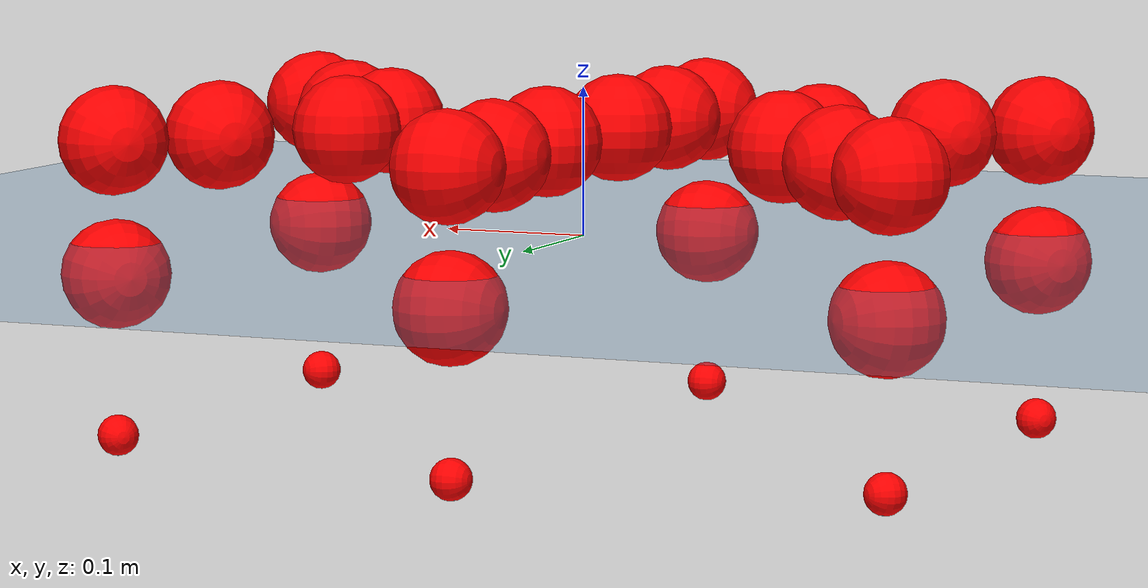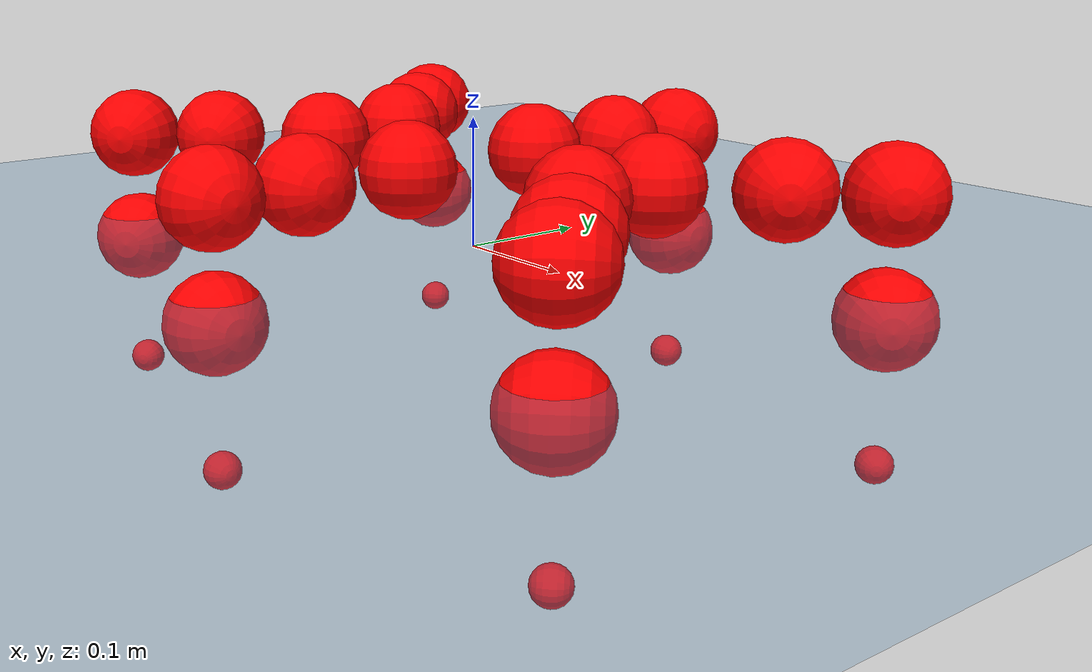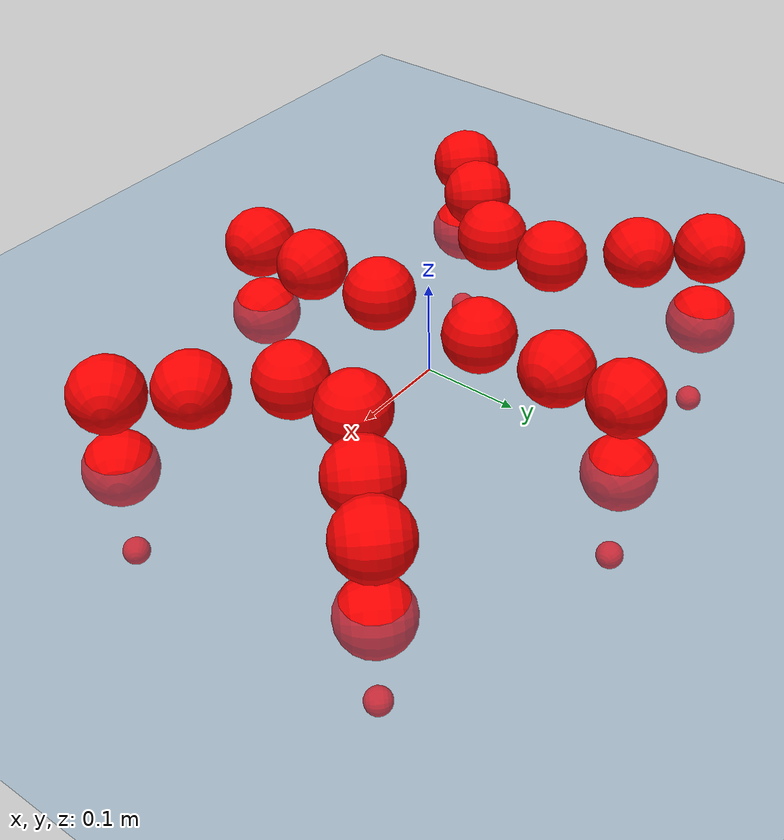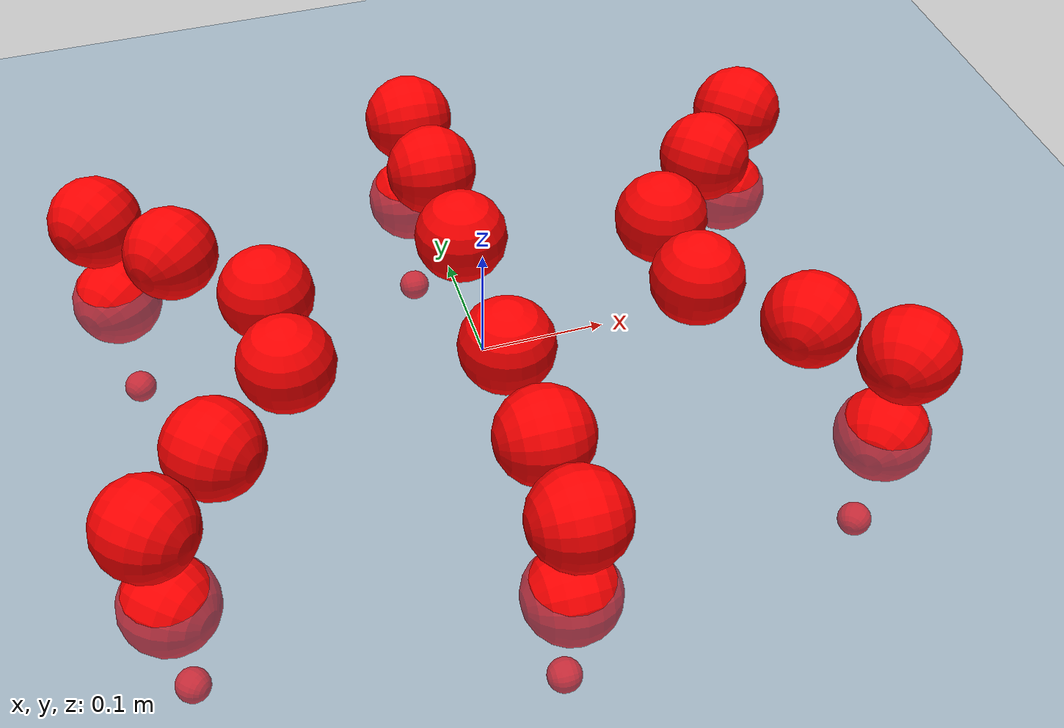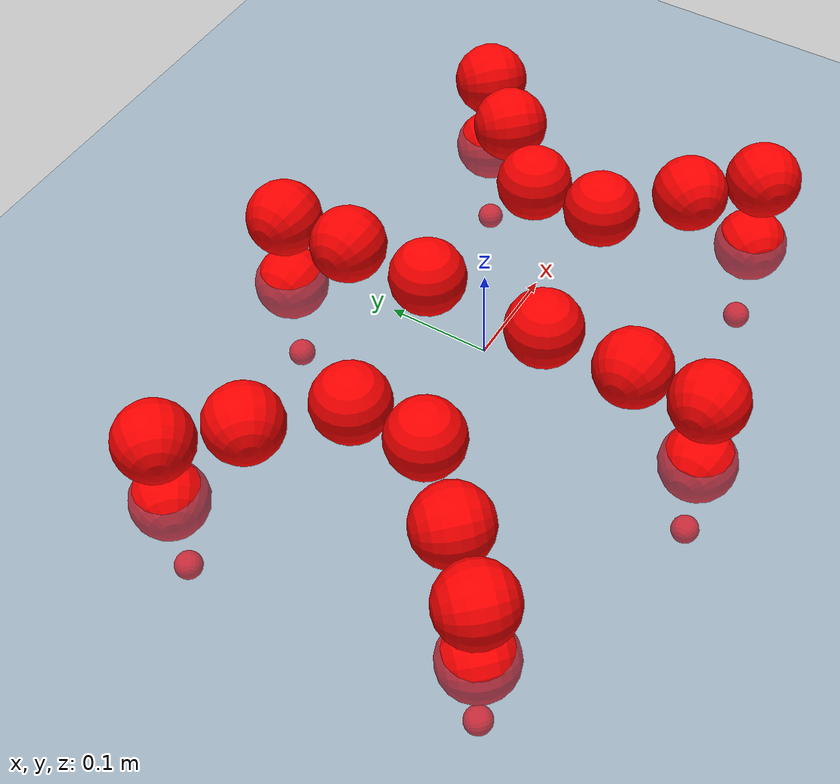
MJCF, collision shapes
<mujoco model="Golem">
  <compiler angle="radian" assetdir="assets" balanceinertia="true" inertiafromgeom="false"/>

  <option timestep="0.005" density="1.2" viscosity="2e-05"/>

  <size nkey="1"/>

  <visual>
    <quality shadowsize="8192"/>
    <map shadowclip="0.5"/>
  </visual>

  <default>
    <default class="/">
      <joint armature="0.01" damping="0.01" frictionloss="0.01"/>
      <geom contype="0" conaffinity="0" group="1" solref="-1000 -80"/>
      <site size="0.01 0.005 0.005" group="5"/>
      <general forcelimited="true" biastype="affine" gainprm="25" biasprm="0 -25 -0.5"/>
      <default class="visual">
        <geom type="mesh" group="2"/>
      </default>
      <default class="collision">
        <geom group="3"/>
      </default>
      <default class="foot">
        <geom size="0.01 0 0" condim="6" group="4" priority="1" solimp="0.015 1 0.01"/>
      </default>
      <default class="reward_collision_sphere">
        <geom group="5" rgba="1 0 0 1"/>
      </default>
    </default>
  </default>

  <asset>
    <texture type="skybox" colorspace="auto" name="//unnamed_texture_0" builtin="gradient" rgb1="0.95 0.95 0.95" rgb2="0.95 0.95 0.95" width="100" height="600"/>
    <texture type="2d" colorspace="auto" name="texplane" builtin="checker" rgb1="0.345 0.575 0.748" rgb2="0.345 0.575 0.748" markrgb="1 1 1" width="512" height="512"/>
    <material name="MatPlane" class="/" texture="texplane" texuniform="true" texrepeat="2 2" specular="0.9"/>
    <mesh name="body" class="/" file="body.stl" scale="0.001 0.001 0.001"/>
    <mesh name="coxa" class="/" file="coxa.stl" scale="0.001 0.001 0.001"/>
    <mesh name="femur" class="/" file="femur.stl" scale="0.001 0.001 0.001"/>
    <mesh name="tibia" class="/" file="tibia.stl" scale="0.001 0.001 0.001"/>
    <mesh name="tarsus" class="/" file="tarsus.stl" scale="0.001 0.001 0.001"/>
  </asset>

  <worldbody>
    <geom name="floor" class="/" size="100 100 0.125" type="plane" group="0" material="MatPlane"/>
    <light name="toplight_shadow" class="/" pos="0 0 5" dir="0.0990148 0.0990148 -0.990148" type="directional" ambient="0.04 0.04 0.04" diffuse="0.55 0.55 0.55" specular="0.12 0.12 0.12"/>
    <light name="toplight_fill" class="/" pos="0 0 5" dir="0.0990148 0.0990148 -0.990148" type="directional" castshadow="false" ambient="0.04 0.04 0.04" diffuse="0.3 0.3 0.3" specular="0.08 0.08 0.08"/>
    <body name="trunk" pos="0.000820917 0.000676515 0.000228745" quat="1 4.6516e-06 -4.39026e-06 -3.3766e-05">
      <inertial pos="-0.000494337 -0.00037985 -0.00411419" quat="0.999993 -0.000299835 -0.00219341 0.00285826" mass="2.88233" diaginertia="0.0104572 0.00155689 0.0132167"/>
      <joint name="//unnamed_joint_0" type="free"/>
      <geom name="//unnamed_geom_1" class="/" pos="0 0 0.06786" quat="1 0 0 0" type="mesh" rgba="0.9 0.9 0.9 1" mesh="body"/>
      <site name="imu" class="/" pos="0.127748 -0.00408807 0.10618" size="0.00919812"/>
      <camera name="track" class="/" pos="0 -1.37862 0" quat="0.707107 0.707107 0 0" mode="trackcom"/>
      <camera name="ego_camera" class="/" pos="0.131276 0 0.106031" quat="-0.5 -0.5 0.5 0.5"/>
      <body name="coxa_RR" pos="-0.178942 -0.0568673 0.0679129" quat="0.382741 -3.34312e-05 4.54559e-05 -0.923856">
        <inertial pos="-2.96447e-05 -3.26449e-05 0.000566344" quat="1 0.000160656 -0.000114305 -5.07159e-05" mass="0.156645" diaginertia="0.0106659 0.00156102 0.0134036"/>
        <joint name="coxa_joint_RR" class="/" pos="0 0 0" axis="-0.00140837 0.00130979 -0.999998" range="-3.13655 3.13707" armature="0.00925028" damping="0.00886609" frictionloss="0.00933424"/>
        <geom name="//unnamed_geom_2" class="/" type="mesh" rgba="0.2 0.2 0.2 1" mesh="coxa"/>
        <geom name="//unnamed_geom_3" class="reward_collision_sphere" size="0.0367925" pos="-0.0302944 0 0"/>
        <body name="femur_RR" pos="0.0591535 0.00100632 0.0003148" quat="0.499924 -0.50043 0.499912 0.499733">
          <inertial pos="2.30303e-05 -7.38153e-05 -0.000538767" quat="0.999999 0.000833369 0.000430203 0.000433891" mass="0.157258" diaginertia="0.010575 0.00157033 0.0135794"/>
          <joint name="femur_joint_RR" class="/" pos="0 0 0" axis="-0.000502831 0.00103685 -0.999999" range="-3.14888 3.13847" armature="0.00926558" damping="0.00445449" frictionloss="0.00922984"/>
          <geom name="//unnamed_geom_4" class="/" type="mesh" rgba="0.9 0.9 0.9 1" mesh="femur"/>
          <geom name="//unnamed_geom_5" class="reward_collision_sphere" size="0.0367925"/>
          <body name="tibia_RR" pos="0.000481661 -0.0744897 0.000638297" quat="-2.97627e-05 1 -4.64963e-05 3.61014e-05">
            <inertial pos="9.08256e-05 8.86829e-05 0.000606815" quat="0.999995 -0.00293148 0.00150145 -6.48167e-05" mass="0.156995" diaginertia="0.0105529 0.0015526 0.0135031"/>
            <joint name="tibia_joint_RR" class="/" pos="0 0 0" axis="0.0031953 0.00029217 0.999995" range="-3.12492 3.14006" armature="0.00930651" damping="0.000627312" frictionloss="0.00957976"/>
            <geom name="//unnamed_geom_6" class="/" type="mesh" rgba="0.2 0.2 0.2 1" mesh="tibia"/>
            <geom name="//unnamed_geom_7" class="reward_collision_sphere" size="0.0367925"/>
            <body name="tarsus_RR" pos="0.0887914 -0.000187052 -0.00125453" quat="1 -6.50257e-05 6.23961e-05 -0.000114782">
              <inertial pos="0.0612713 0.000710062 0.000174704" quat="0.5006 0.499589 0.500393 0.499417" mass="0.158387" diaginertia="0.0105919 0.00157521 0.013449"/>
              <joint name="tarsus_joint_RR" class="/" pos="0 0 0" axis="0.00478299 0.00168632 0.999987" stiffness="0.00160252" range="-3.13433 3.15357" armature="0.00918217" damping="0.0419417" frictionloss="0.00941785"/>
              <geom name="//unnamed_geom_8" class="/" type="mesh" rgba="0.9 0.9 0.9 1" mesh="tarsus"/>
              <geom name="foot_1" class="foot" size="0.00903283" pos="0.113099 0 0" quat="0 -0.707107 0 0.707107"/>
              <geom name="//unnamed_geom_10" class="reward_collision_sphere" size="0.0367925"/>
              <geom name="//unnamed_geom_11" class="reward_collision_sphere" size="0.0137972" pos="0.108555 0 0"/>
              <site name="foot_1" class="foot" pos="0.113099 0 0" quat="0 -0.707107 0 0.707107" size="0.00919812"/>
            </body>
          </body>
        </body>
      </body>
      <body name="coxa_RM" pos="-0.000213839 -0.0924012 0.0673425" quat="0.70709 6.96223e-06 -9.14523e-06 -0.707124">
        <inertial pos="0.00100239 0.000293329 0.000653763" quat="0.999991 -0.00292725 -0.00265177 0.00164009" mass="0.155435" diaginertia="0.0105395 0.00155898 0.0134686"/>
        <joint name="coxa_joint_RM" class="/" pos="0 0 0" axis="-0.000298412 0.000672063 -1" range="-3.14441 3.14282" armature="0.00917708" damping="0.00963062" frictionloss="0.00922985"/>
        <geom name="//unnamed_geom_12" class="/" type="mesh" rgba="0.2 0.2 0.2 1" mesh="coxa"/>
        <geom name="//unnamed_geom_13" class="reward_collision_sphere" size="0.0367925" pos="-0.0302944 0 0"/>
        <body name="femur_RM" pos="0.0582029 -0.000475334 -0.000462885" quat="0.499683 -0.500374 0.499899 0.500045">
          <inertial pos="-0.000242916 -0.000370695 0.000151597" quat="1 3.69202e-05 0.000157601 0.000206078" mass="0.154823" diaginertia="0.010566 0.00157166 0.0133972"/>
          <joint name="femur_joint_RM" class="/" pos="0 0 0" axis="0.00389936 -0.00105367 -0.999992" range="-3.13573 3.14133" armature="0.00930453" damping="0.0130726" frictionloss="0.00933317"/>
          <geom name="//unnamed_geom_14" class="/" type="mesh" rgba="0.9 0.9 0.9 1" mesh="femur"/>
          <geom name="//unnamed_geom_15" class="reward_collision_sphere" size="0.0367925"/>
          <body name="tibia_RM" pos="-5.70925e-05 -0.0726491 -0.000285688" quat="-6.11381e-06 1 5.43116e-05 -9.20392e-05">
            <inertial pos="-1.12187e-05 0.000377334 0.000612804" quat="1 7.4341e-06 0.000154768 0.000101885" mass="0.155309" diaginertia="0.0104561 0.00158231 0.0134816"/>
            <joint name="tibia_joint_RM" class="/" pos="0 0 0" axis="-0.0031768 -0.0046143 0.999984" range="-3.13865 3.13635" armature="0.00909311" damping="0.0115066" frictionloss="0.00911273"/>
            <geom name="//unnamed_geom_16" class="/" type="mesh" rgba="0.2 0.2 0.2 1" mesh="tibia"/>
            <geom name="//unnamed_geom_17" class="reward_collision_sphere" size="0.0367925"/>
            <body name="tarsus_RM" pos="0.0879985 0.000439232 0.000776302" quat="1 -4.58211e-05 2.01708e-05 2.41847e-05">
              <inertial pos="0.0605162 0.000297923 0.000457327" quat="0.499916 0.498591 0.500684 0.500807" mass="0.155837" diaginertia="0.010621 0.00156643 0.0133254"/>
              <joint name="tarsus_joint_RM" class="/" pos="0 0 0" axis="-0.00150847 -0.00435742 0.999989" range="-3.14393 3.13857" armature="0.00921911" damping="0.00748858" frictionloss="0.00908748"/>
              <geom name="//unnamed_geom_18" class="/" type="mesh" rgba="0.9 0.9 0.9 1" mesh="tarsus"/>
              <geom name="foot_2" class="foot" size="0.00932058" pos="0.113099 0 0" quat="0 -0.707107 0 0.707107"/>
              <geom name="//unnamed_geom_20" class="reward_collision_sphere" size="0.0367925"/>
              <geom name="//unnamed_geom_21" class="reward_collision_sphere" size="0.0137972" pos="0.108555 0 0"/>
              <site name="foot_2" class="foot" pos="0.113099 0 0" quat="0 -0.707107 0 0.707107" size="0.00919812"/>
            </body>
          </body>
        </body>
      </body>
      <body name="coxa_RF" pos="0.180242 -0.0580825 0.0685719" quat="0.923767 0.000113373 4.45855e-05 -0.382956">
        <inertial pos="-5.23721e-05 0.000275118 -0.000150218" quat="0.999994 0.00106777 -0.00316873 0.00038763" mass="0.157254" diaginertia="0.0104226 0.00156311 0.013408"/>
        <joint name="coxa_joint_RF" class="/" pos="0 0 0" axis="-0.00221124 -8.54601e-05 -0.999998" range="-3.13816 3.14012" armature="0.00884055" damping="0.00813239" frictionloss="0.00902763"/>
        <geom name="//unnamed_geom_22" class="/" type="mesh" rgba="0.2 0.2 0.2 1" mesh="coxa"/>
        <geom name="//unnamed_geom_23" class="reward_collision_sphere" size="0.0367925" pos="-0.0302944 0 0"/>
        <body name="femur_RF" pos="0.0597246 2.36459e-05 -0.00112682" quat="0.500062 -0.499947 0.499946 0.500045">
          <inertial pos="-0.000333405 -0.000274736 -0.000461291" quat="0.999999 0.000945664 -0.000788424 0.000719018" mass="0.157346" diaginertia="0.0103996 0.00157043 0.0134496"/>
          <joint name="femur_joint_RF" class="/" pos="0 0 0" axis="-0.00384484 -0.00175709 -0.999991" range="-3.13595 3.1547" armature="0.0091677" damping="0.0101" frictionloss="0.00898052"/>
          <geom name="//unnamed_geom_24" class="/" type="mesh" rgba="0.9 0.9 0.9 1" mesh="femur"/>
          <geom name="//unnamed_geom_25" class="reward_collision_sphere" size="0.0367925"/>
          <body name="tibia_RF" pos="-0.000898428 -0.0748311 -0.00125984" quat="-9.21908e-05 1 -6.97149e-05 7.3609e-05">
            <inertial pos="0.000338795 0.000845783 -0.000121903" quat="0.999995 -0.00163792 0.00140163 0.00220105" mass="0.153884" diaginertia="0.0105118 0.00155043 0.0134292"/>
            <joint name="tibia_joint_RF" class="/" pos="0 0 0" axis="0.00198044 -0.00199273 0.999996" range="-3.13971 3.15546" armature="0.00932755" damping="0" frictionloss="0.0091529"/>
            <geom name="//unnamed_geom_26" class="/" type="mesh" rgba="0.2 0.2 0.2 1" mesh="tibia"/>
            <geom name="//unnamed_geom_27" class="reward_collision_sphere" size="0.0367925"/>
            <body name="tarsus_RF" pos="0.087882 -0.000787663 0.00105104" quat="1 -8.16558e-05 -0.00022891 0.00024161">
              <inertial pos="0.0606692 -2.88956e-05 2.52365e-05" quat="0.501211 0.500265 0.498435 0.500085" mass="0.156091" diaginertia="0.0104781 0.00155954 0.0135186"/>
              <joint name="tarsus_joint_RF" class="/" pos="0 0 0" axis="-0.00174658 -0.00244438 0.999995" range="-3.12982 3.14009" armature="0.00881638" damping="0.00238233" frictionloss="0.00937797"/>
              <geom name="//unnamed_geom_28" class="/" type="mesh" rgba="0.9 0.9 0.9 1" mesh="tarsus"/>
              <geom name="foot_3" class="foot" size="0.00909566" pos="0.113099 0 0" quat="0 -0.707107 0 0.707107"/>
              <geom name="//unnamed_geom_30" class="reward_collision_sphere" size="0.0367925"/>
              <geom name="//unnamed_geom_31" class="reward_collision_sphere" size="0.0137972" pos="0.108555 0 0"/>
              <site name="foot_3" class="foot" pos="0.113099 0 0" quat="0 -0.707107 0 0.707107" size="0.00919812"/>
            </body>
          </body>
        </body>
      </body>
      <body name="coxa_LR" pos="-0.180019 0.0599474 0.0692298" quat="0.38287 -0.000112721 -6.5995e-05 0.923802">
        <inertial pos="0.000199826 0.000274569 0.000517968" quat="0.999991 0.00277 3.68926e-05 0.00307551" mass="0.155686" diaginertia="0.0104106 0.00154062 0.0133352"/>
        <joint name="coxa_joint_LR" class="/" pos="0 0 0" axis="2.91486e-05 -3.70508e-05 -1" range="-3.14825 3.14367" armature="0.00880729" damping="0.0094544" frictionloss="0.00908699"/>
        <geom name="//unnamed_geom_32" class="/" type="mesh" rgba="0.2 0.2 0.2 1" mesh="coxa"/>
        <geom name="//unnamed_geom_33" class="reward_collision_sphere" size="0.0367925" pos="-0.0302944 0 0"/>
        <body name="femur_LR" pos="0.0612935 -0.00240665 -0.00154173" quat="0.499955 -0.499993 0.499968 0.500083">
          <inertial pos="-0.000238838 0.000207357 0.000118665" quat="0.999995 0.00102929 -0.00280298 0.000662669" mass="0.156741" diaginertia="0.0105705 0.0015752 0.0134471"/>
          <joint name="femur_joint_LR" class="/" pos="0 0 0" axis="-0.000235747 0.000126394 1" range="-3.1433 3.15528" armature="0.00883013" damping="0.00306005" frictionloss="0.00898906"/>
          <geom name="//unnamed_geom_34" class="/" type="mesh" rgba="0.9 0.9 0.9 1" mesh="femur"/>
          <geom name="//unnamed_geom_35" class="reward_collision_sphere" size="0.0367925"/>
          <body name="tibia_LR" pos="0.00108531 -0.0756492 -0.00119575" quat="-0.000282205 1 -7.11382e-05 -0.000269712">
            <inertial pos="-0.00105204 0.000203692 6.94126e-05" quat="0.999992 -0.000347276 -0.00216248 -0.00328029" mass="0.157811" diaginertia="0.0105772 0.00154639 0.0133925"/>
            <joint name="tibia_joint_LR" class="/" pos="0 0 0" axis="-0.000422021 -0.000688831 -1" range="-3.13874 3.13965" armature="0.0093735" damping="0.00521989" frictionloss="0.00892649"/>
            <geom name="//unnamed_geom_36" class="/" type="mesh" rgba="0.2 0.2 0.2 1" mesh="tibia"/>
            <geom name="//unnamed_geom_37" class="reward_collision_sphere" size="0.0367925"/>
            <body name="tarsus_LR" pos="0.0885808 0.000524308 0.00181867" quat="1 5.95834e-05 -7.92462e-05 -4.81786e-06">
              <inertial pos="0.0615077 0.00116611 -0.000240368" quat="0.500655 0.5002 0.499218 0.499926" mass="0.154974" diaginertia="0.0104234 0.00154247 0.0133079"/>
              <joint name="tarsus_joint_LR" class="/" pos="0 0 0" axis="-0.000342358 -0.000575404 -1" stiffness="0.00697592" range="-3.14157 3.13428" armature="0.00908588" damping="0.0280487" frictionloss="0.0090564"/>
              <geom name="//unnamed_geom_38" class="/" type="mesh" rgba="0.9 0.9 0.9 1" mesh="tarsus"/>
              <geom name="foot_4" class="foot" size="0.00929057" pos="0.113099 0 0" quat="0.707107 0 -0.707107 0"/>
              <geom name="//unnamed_geom_40" class="reward_collision_sphere" size="0.0367925"/>
              <geom name="//unnamed_geom_41" class="reward_collision_sphere" size="0.0137972" pos="0.108555 0 0"/>
              <site name="foot_4" class="foot" pos="0.113099 0 0" quat="0.707107 0 -0.707107 0" size="0.00919812"/>
            </body>
          </body>
        </body>
      </body>
      <body name="coxa_LM" pos="-0.000465098 0.0899453 0.0686075" quat="0.707053 3.28947e-05 -5.76101e-05 0.707161">
        <inertial pos="-0.000315347 0.000304225 0.00167021" quat="0.999994 -0.00200915 -0.00224127 -0.00187724" mass="0.154419" diaginertia="0.0105412 0.00154609 0.0132907"/>
        <joint name="coxa_joint_LM" class="/" pos="0 0 0" axis="0.000607641 4.65052e-05 -1" range="-3.14241 3.13787" armature="0.00941727" damping="0.00018897" frictionloss="0.00938327"/>
        <geom name="//unnamed_geom_42" class="/" type="mesh" rgba="0.2 0.2 0.2 1" mesh="coxa"/>
        <geom name="//unnamed_geom_43" class="reward_collision_sphere" size="0.0367925" pos="-0.0302944 0 0"/>
        <body name="femur_LM" pos="0.0562728 0.00113856 -0.00122422" quat="0.500359 -0.499748 0.500216 0.499676">
          <inertial pos="0.000566416 0.000206716 0.000376342" quat="0.999994 -0.00135468 -0.00102993 -0.00287786" mass="0.153062" diaginertia="0.0103384 0.00153512 0.0132509"/>
          <joint name="femur_joint_LM" class="/" pos="0 0 0" axis="-0.00131031 -0.000663402 0.999999" range="-3.15534 3.14877" armature="0.0088054" damping="0.00127998" frictionloss="0.00922311"/>
          <geom name="//unnamed_geom_44" class="/" type="mesh" rgba="0.9 0.9 0.9 1" mesh="femur"/>
          <geom name="//unnamed_geom_45" class="reward_collision_sphere" size="0.0367925"/>
          <body name="tibia_LM" pos="0.000482614 -0.0724718 0.00119464" quat="2.57562e-05 1 8.7171e-05 0.000165402">
            <inertial pos="-0.000158861 -0.00146917 0.000467669" quat="1 -0.000144812 0.000204587 0.000159245" mass="0.155904" diaginertia="0.0105378 0.00156707 0.0132736"/>
            <joint name="tibia_joint_LM" class="/" pos="0 0 0" axis="-0.0023183 -0.00335769 -0.999992" range="-3.13007 3.13669" armature="0.00882274" damping="0" frictionloss="0.00958468"/>
            <geom name="//unnamed_geom_46" class="/" type="mesh" rgba="0.2 0.2 0.2 1" mesh="tibia"/>
            <geom name="//unnamed_geom_47" class="reward_collision_sphere" size="0.0367925"/>
            <body name="tarsus_LM" pos="0.0889792 0.000383805 -0.00177926" quat="1 0.000142052 -0.000324922 0.000136926">
              <inertial pos="0.0613836 0.000385562 -0.000904809" quat="0.500306 0.500755 0.50006 0.498877" mass="0.155999" diaginertia="0.0105404 0.00157242 0.0134253"/>
              <joint name="tarsus_joint_LM" class="/" pos="0 0 0" axis="0.000363218 0.00589965 -0.999983" range="-3.15307 3.135" armature="0.0092138" damping="0.000409818" frictionloss="0.00924024"/>
              <geom name="//unnamed_geom_48" class="/" type="mesh" rgba="0.9 0.9 0.9 1" mesh="tarsus"/>
              <geom name="foot_5" class="foot" size="0.00926026" pos="0.113099 0 0" quat="0.707107 0 -0.707107 0"/>
              <geom name="//unnamed_geom_50" class="reward_collision_sphere" size="0.0367925"/>
              <geom name="//unnamed_geom_51" class="reward_collision_sphere" size="0.0137972" pos="0.108555 0 0"/>
              <site name="foot_5" class="foot" pos="0.113099 0 0" quat="0.707107 0 -0.707107 0" size="0.00919812"/>
            </body>
          </body>
        </body>
      </body>
      <body name="coxa_LF" pos="0.179082 0.0572053 0.0688673" quat="0.923878 5.46146e-05 -5.70218e-05 0.382687">
        <inertial pos="0.000182726 0.000238694 -0.000215068" quat="1 5.68407e-05 -0.000169201 5.2433e-06" mass="0.157687" diaginertia="0.010632 0.00154523 0.0134632"/>
        <joint name="coxa_joint_LF" class="/" pos="0 0 0" axis="-0.000159014 -0.000133007 -1" range="-3.13815 3.13267" armature="0.00949615" damping="0.00850899" frictionloss="0.00941078"/>
        <geom name="//unnamed_geom_52" class="/" type="mesh" rgba="0.2 0.2 0.2 1" mesh="coxa"/>
        <geom name="//unnamed_geom_53" class="reward_collision_sphere" size="0.0367925" pos="-0.0302944 0 0"/>
        <body name="femur_LF" pos="0.0589674 -0.00030069 -0.000789016" quat="0.499727 -0.500135 0.500093 0.500045">
          <inertial pos="-0.00091321 -0.000485618 0.000374694" quat="0.999997 0.00110918 -0.000195151 0.00232592" mass="0.155178" diaginertia="0.0106069 0.00156793 0.0134578"/>
          <joint name="femur_joint_LF" class="/" pos="0 0 0" axis="-0.00481777 -0.00494725 0.999976" range="-3.14158 3.13739" armature="0.0092034" damping="0.00415784" frictionloss="0.00940902"/>
          <geom name="//unnamed_geom_54" class="/" type="mesh" rgba="0.9 0.9 0.9 1" mesh="femur"/>
          <geom name="//unnamed_geom_55" class="reward_collision_sphere" size="0.0367925"/>
          <body name="tibia_LF" pos="0.000918555 -0.0738004 0.000476184" quat="-0.000122073 1 -0.000308607 9.45364e-05">
            <inertial pos="0.00049681 0.000283004 0.000159793" quat="1 -0.000146408 -4.9794e-05 -6.50018e-05" mass="0.155281" diaginertia="0.0105711 0.00155607 0.0133368"/>
            <joint name="tibia_joint_LF" class="/" pos="0 0 0" axis="7.62388e-06 8.98959e-05 -1" stiffness="0.000793483" range="-3.12619 3.13374" armature="0.00877013" damping="0.000225783" frictionloss="0.00906313"/>
            <geom name="//unnamed_geom_56" class="/" type="mesh" rgba="0.2 0.2 0.2 1" mesh="tibia"/>
            <geom name="//unnamed_geom_57" class="reward_collision_sphere" size="0.0367925"/>
            <body name="tarsus_LF" pos="0.0891074 -0.000936741 2.64155e-05" quat="1 -0.000214477 -0.000181161 -0.000201439">
              <inertial pos="0.0628331 0.000439037 -2.32807e-05" quat="0.500652 0.498818 0.499868 0.500659" mass="0.156228" diaginertia="0.0105077 0.00155049 0.0134144"/>
              <joint name="tarsus_joint_LF" class="/" pos="0 0 0" axis="-0.00314188 -0.00269393 -0.999991" stiffness="0.0270796" range="-3.13048 3.15008" armature="0.00934734" damping="0.0261697" frictionloss="0.00901113"/>
              <geom name="//unnamed_geom_58" class="/" type="mesh" rgba="0.9 0.9 0.9 1" mesh="tarsus"/>
              <geom name="foot_6" class="foot" size="0.00930206" pos="0.113099 0 0" quat="0.707107 0 -0.707107 0"/>
              <geom name="//unnamed_geom_60" class="reward_collision_sphere" size="0.0367925"/>
              <geom name="//unnamed_geom_61" class="reward_collision_sphere" size="0.0137972" pos="0.108555 0 0"/>
              <site name="foot_6" class="foot" pos="0.113099 0 0" quat="0.707107 0 -0.707107 0" size="0.00919812"/>
            </body>
          </body>
        </body>
      </body>
    </body>
  </worldbody>

  <contact>
    <pair class="/" geom1="floor" geom2="foot_1" name="//unnamed_contact_0"/>
    <pair class="/" geom1="floor" geom2="foot_2" name="//unnamed_contact_1"/>
    <pair class="/" geom1="floor" geom2="foot_3" name="//unnamed_contact_2"/>
    <pair class="/" geom1="floor" geom2="foot_4" name="//unnamed_contact_3"/>
    <pair class="/" geom1="floor" geom2="foot_5" name="//unnamed_contact_4"/>
    <pair class="/" geom1="floor" geom2="foot_6" name="//unnamed_contact_5"/>
  </contact>

  <actuator>
    <general name="coxa_joint_RR" class="/" joint="coxa_joint_RR" forcerange="-6.73165 6.73165" gainprm="22.1509" biasprm="0 -22.1509 -0.491861"/>
    <general name="femur_joint_RR" class="/" joint="femur_joint_RR" forcerange="-6.65436 6.65436" gainprm="22.1509" biasprm="0 -22.1509 -0.491861"/>
    <general name="tibia_joint_RR" class="/" joint="tibia_joint_RR" forcerange="-6.63276 6.63276" gainprm="22.1509" biasprm="0 -22.1509 -0.491861"/>
    <general name="tarsus_joint_RR" class="/" joint="tarsus_joint_RR" forcerange="-6.57583 6.57583" gainprm="22.1509" biasprm="0 -22.1509 -0.491861"/>
    <general name="coxa_joint_RM" class="/" joint="coxa_joint_RM" forcerange="-6.727 6.727" gainprm="22.1509" biasprm="0 -22.1509 -0.491861"/>
    <general name="femur_joint_RM" class="/" joint="femur_joint_RM" forcerange="-6.73145 6.73145" gainprm="22.1509" biasprm="0 -22.1509 -0.491861"/>
    <general name="tibia_joint_RM" class="/" joint="tibia_joint_RM" forcerange="-6.81602 6.81602" gainprm="22.1509" biasprm="0 -22.1509 -0.491861"/>
    <general name="tarsus_joint_RM" class="/" joint="tarsus_joint_RM" forcerange="-6.76514 6.76514" gainprm="22.1509" biasprm="0 -22.1509 -0.491861"/>
    <general name="coxa_joint_RF" class="/" joint="coxa_joint_RF" forcerange="-6.81137 6.81137" gainprm="22.1509" biasprm="0 -22.1509 -0.491861"/>
    <general name="femur_joint_RF" class="/" joint="femur_joint_RF" forcerange="-6.67968 6.67968" gainprm="22.1509" biasprm="0 -22.1509 -0.491861"/>
    <general name="tibia_joint_RF" class="/" joint="tibia_joint_RF" forcerange="-6.67735 6.67735" gainprm="22.1509" biasprm="0 -22.1509 -0.491861"/>
    <general name="tarsus_joint_RF" class="/" joint="tarsus_joint_RF" forcerange="-6.67459 6.67459" gainprm="22.1509" biasprm="0 -22.1509 -0.491861"/>
    <general name="coxa_joint_LR" class="/" joint="coxa_joint_LR" forcerange="-6.70365 6.70365" gainprm="22.1509" biasprm="0 -22.1509 -0.491861"/>
    <general name="femur_joint_LR" class="/" joint="femur_joint_LR" forcerange="-6.90005 6.90005" gainprm="22.1509" biasprm="0 -22.1509 -0.491861"/>
    <general name="tibia_joint_LR" class="/" joint="tibia_joint_LR" forcerange="-6.74704 6.74704" gainprm="22.1509" biasprm="0 -22.1509 -0.491861"/>
    <general name="tarsus_joint_LR" class="/" joint="tarsus_joint_LR" forcerange="-6.92808 6.92808" gainprm="22.1509" biasprm="0 -22.1509 -0.491861"/>
    <general name="coxa_joint_LM" class="/" joint="coxa_joint_LM" forcerange="-6.7438 6.7438" gainprm="22.1509" biasprm="0 -22.1509 -0.491861"/>
    <general name="femur_joint_LM" class="/" joint="femur_joint_LM" forcerange="-6.59639 6.59639" gainprm="22.1509" biasprm="0 -22.1509 -0.491861"/>
    <general name="tibia_joint_LM" class="/" joint="tibia_joint_LM" forcerange="-6.93375 6.93375" gainprm="22.1509" biasprm="0 -22.1509 -0.491861"/>
    <general name="tarsus_joint_LM" class="/" joint="tarsus_joint_LM" forcerange="-6.62824 6.62824" gainprm="22.1509" biasprm="0 -22.1509 -0.491861"/>
    <general name="coxa_joint_LF" class="/" joint="coxa_joint_LF" forcerange="-6.65302 6.65302" gainprm="22.1509" biasprm="0 -22.1509 -0.491861"/>
    <general name="femur_joint_LF" class="/" joint="femur_joint_LF" forcerange="-6.8351 6.8351" gainprm="22.1509" biasprm="0 -22.1509 -0.491861"/>
    <general name="tibia_joint_LF" class="/" joint="tibia_joint_LF" forcerange="-6.50096 6.50096" gainprm="22.1509" biasprm="0 -22.1509 -0.491861"/>
    <general name="tarsus_joint_LF" class="/" joint="tarsus_joint_LF" forcerange="-6.72738 6.72738" gainprm="22.1509" biasprm="0 -22.1509 -0.491861"/>
  </actuator>

  <sensor>
    <gyro site="imu" name="imu_angular_velocity"/>
    <velocimeter site="imu" name="imu_linear_velocity"/>
    <framelinvel objtype="site" objname="foot_1" name="foot_1_global_linear_velocity"/>
    <framelinvel objtype="site" objname="foot_2" name="foot_2_global_linear_velocity"/>
    <framelinvel objtype="site" objname="foot_3" name="foot_3_global_linear_velocity"/>
    <framelinvel objtype="site" objname="foot_4" name="foot_4_global_linear_velocity"/>
    <framelinvel objtype="site" objname="foot_5" name="foot_5_global_linear_velocity"/>
    <framelinvel objtype="site" objname="foot_6" name="foot_6_global_linear_velocity"/>
  </sensor>

  <keyframe>
    <key name="home" qpos="0 0 0.1457 1 0 0 0 0 0 0 0 0 0 0 0 0 0 0 0 0 0 0 0 0 0 0 0 0 0 0 0"/>
  </keyframe>
</mujoco>
